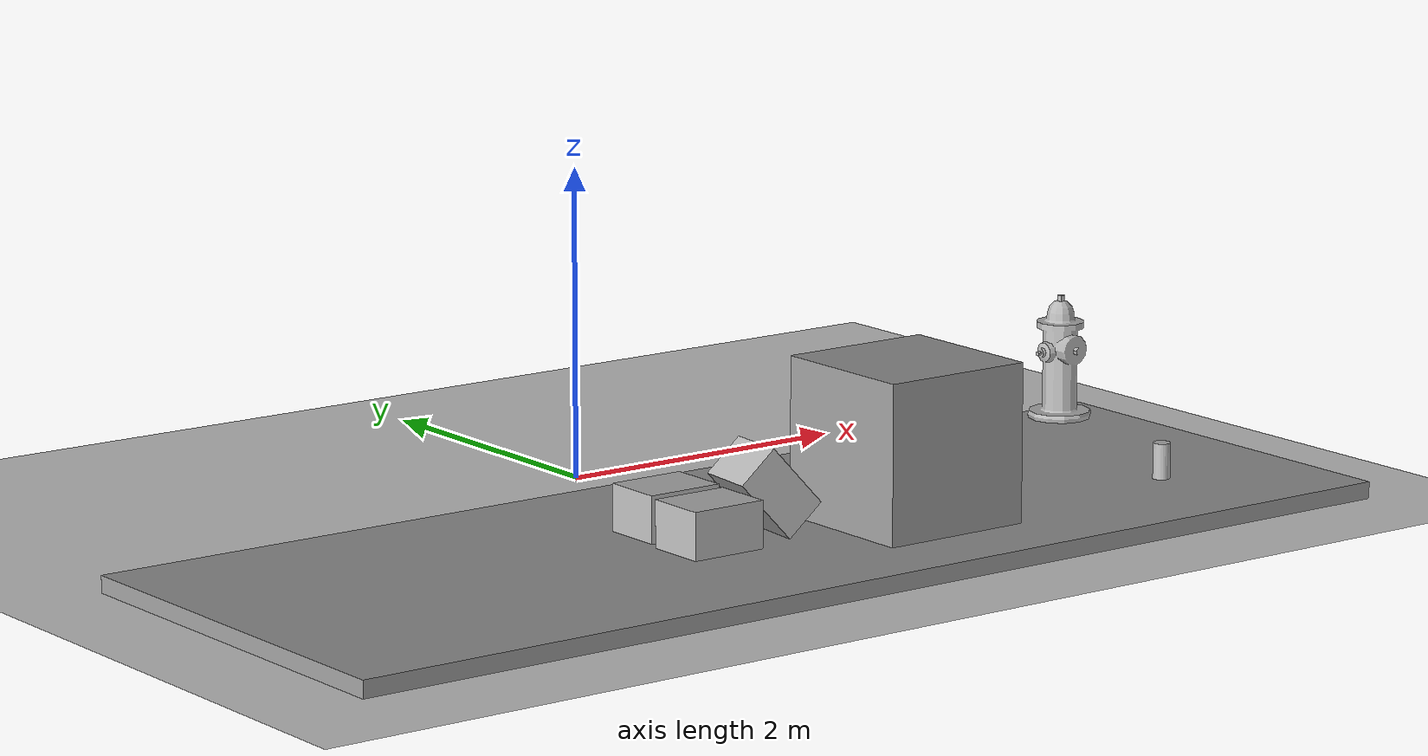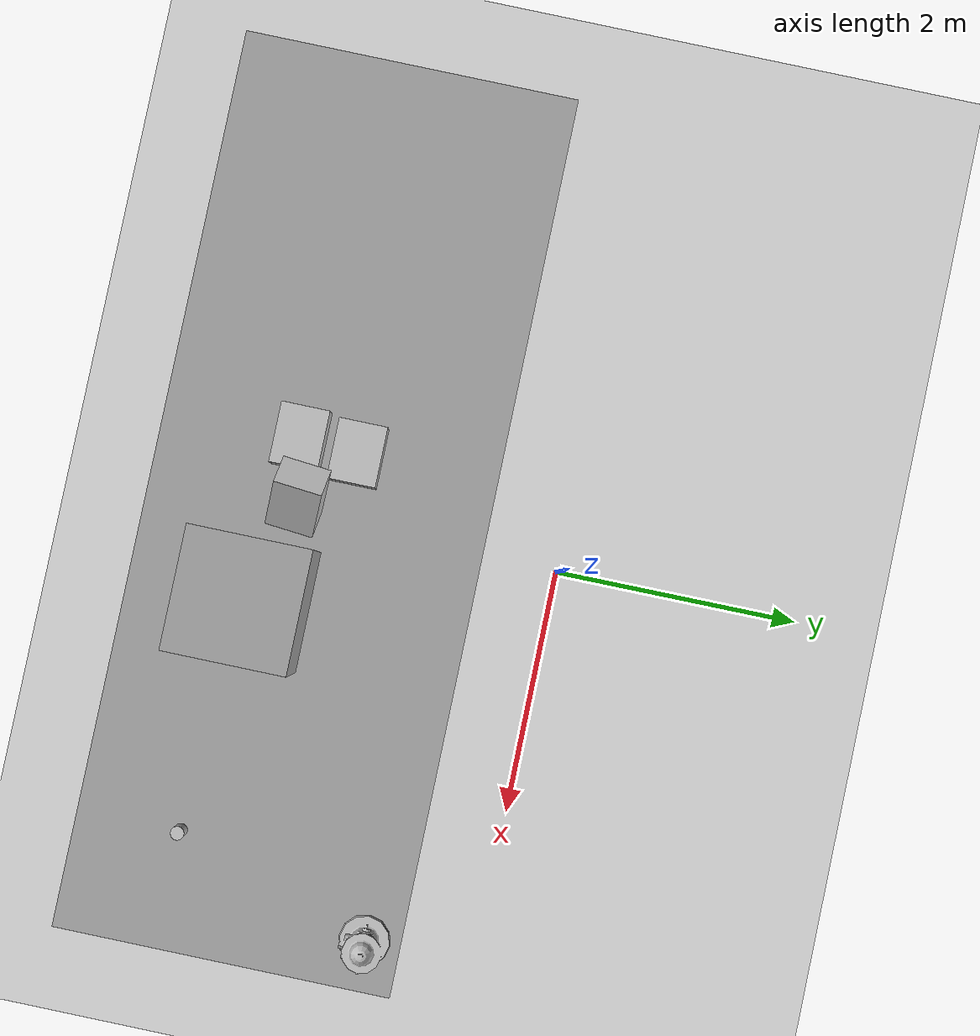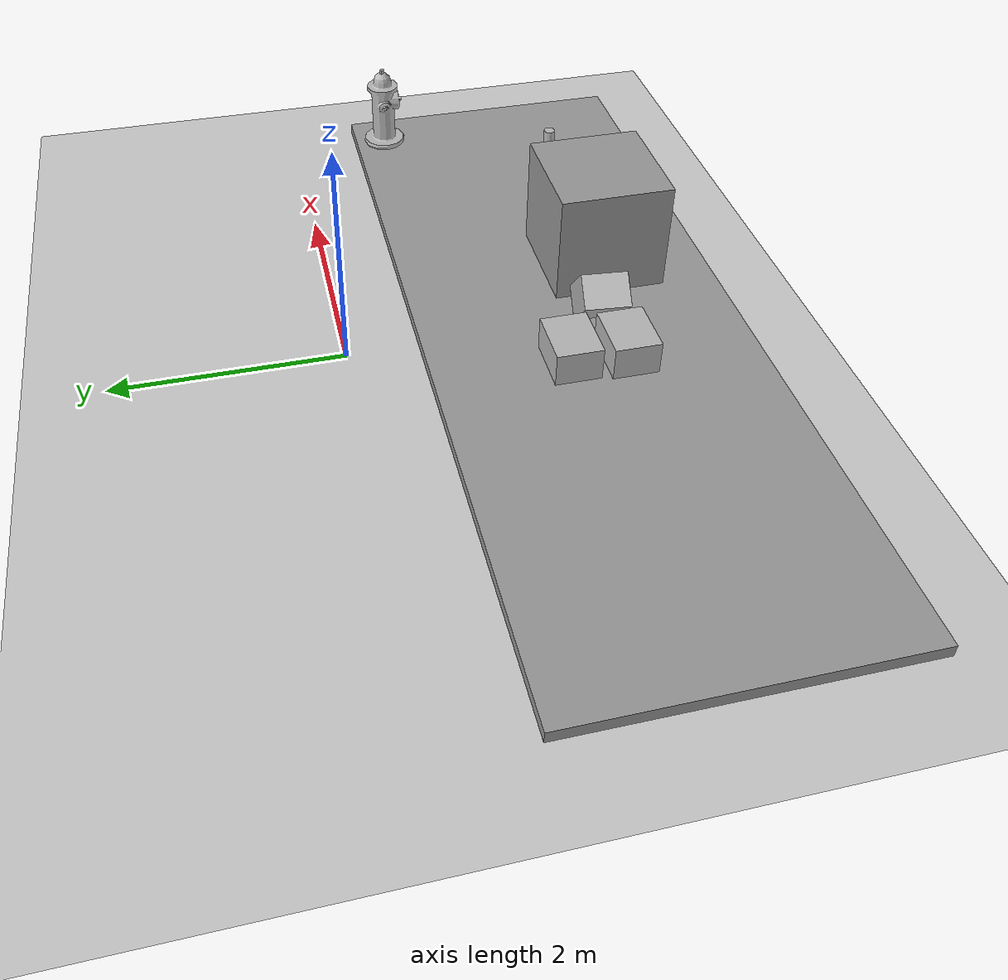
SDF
<sdf version="1.7">
 <world name="default">
  <light name="sun" type="directional">
   <pose>0 0 10 0 -0 0</pose>
   <diffuse>0.8 0.8 0.8 1</diffuse>
   <specular>0.2 0.2 0.2 1</specular>
   <attenuation>
    <range>1000</range>
    <constant>0.9</constant>
    <linear>0.01</linear>
    <quadratic>0.001</quadratic>
   </attenuation>
   <direction>-0.5 0.1 -0.9</direction>
   <spot><inner_angle>0</inner_angle><outer_angle>0</outer_angle><falloff>0</falloff></spot>
  </light>
  <model name="ground_plane">
   <static>1</static>
   <link name="link">
    <collision name="collision">
     <geometry><plane><normal>0 0 1</normal><size>100 100</size></plane></geometry>
     <surface><friction><ode><mu>100</mu><mu2>50</mu2></ode></friction></surface>
    </collision>
    <visual name="visual">
     <cast_shadows>0</cast_shadows>
     <geometry><plane><normal>0 0 1</normal><size>100 100</size></plane></geometry>
     <material>
      <script><uri>file://media/materials/scripts/gazebo.material</uri><name>Gazebo/Grey</name></script>
     </material>
    </visual>
   </link>
  </model>
  <gravity>0 0 -9.8</gravity>
  <magnetic_field>6e-06 2.3e-05 -4.2e-05</magnetic_field>
  <atmosphere type="adiabatic"/>
  <physics type="ode">
   <max_step_size>0.001</max_step_size>
   <real_time_factor>1</real_time_factor>
   <real_time_update_rate>1000</real_time_update_rate>
  </physics>
  <scene><ambient>0.4 0.4 0.4 1</ambient><background>0.7 0.7 0.7 1</background><shadows>1</shadows></scene>
  <spherical_coordinates>
   <surface_model>EARTH_WGS84</surface_model>
   <latitude_deg>0</latitude_deg>
   <longitude_deg>0</longitude_deg>
   <elevation>0</elevation>
   <heading_deg>0</heading_deg>
  </spherical_coordinates>
  <model name="grey_wall">
   <static>1</static>
   <link name="link">
    <pose>0 0 1.4 0 -0 0</pose>
    <collision name="collision"><geometry><box><size>7.5 0.2 2.8</size></box></geometry></collision>
    <visual name="visual">
     <cast_shadows>0</cast_shadows>
     <geometry><box><size>7.5 0.2 2.8</size></box></geometry>
     <material>
      <script>
       <uri>model://grey_wall/materials/scripts</uri>
       <uri>model://grey_wall/materials/textures</uri>
       <name>vrc/grey_wall</name>
      </script>
     </material>
    </visual>
   </link>
   <pose>-0.091714 -0.62023 5e-06 1.5708 -0 0</pose>
  </model>
  <model name="beer">
   <link name="link">
    <pose>0 0 0.115 0 -0 0</pose>
    <inertial>
     <mass>0.39</mass>
     <inertia><ixx>0.00058</ixx><ixy>0</ixy><ixz>0</ixz><iyy>0.00058</iyy><iyz>0</iyz><izz>0.00019</izz></inertia>
    </inertial>
    <collision name="collision">
     <geometry><cylinder><radius>0.055</radius><length>0.23</length></cylinder></geometry>
    </collision>
    <visual name="visual">
     <geometry><cylinder><radius>0.055</radius><length>0.23</length></cylinder></geometry>
     <material>
      <script>
       <uri>model://beer/materials/scripts</uri>
       <uri>model://beer/materials/textures</uri>
       <name>Beer/Diffuse</name>
      </script>
     </material>
    </visual>
   </link>
   <pose>2.68386 -2.56077 0.100004 3e-05 0.000105 -0.000944</pose>
  </model>
  <model name="unit_box">
   <pose>0.742356 -2.41636 0.599985 -6e-06 -1e-06 1e-06</pose>
   <link name="link">
    <inertial>
     <mass>1</mass>
     <inertia>
      <ixx>0.166667</ixx>
      <ixy>0</ixy>
      <ixz>0</ixz>
      <iyy>0.166667</iyy>
      <iyz>0</iyz>
      <izz>0.166667</izz>
     </inertia>
    </inertial>
    <collision name="collision"><geometry><box><size>1.00002 1 0.999983</size></box></geometry></collision>
    <visual name="visual">
     <geometry><box><size>1.00002 1 0.999983</size></box></geometry>
     <material>
      <script><name>Gazebo/Grey</name><uri>file://media/materials/scripts/gazebo.material</uri></script>
     </material>
    </visual>
   </link>
  </model>
  <model name="fire_hydrant">
   <static>1</static>
   <link name="link">
    <collision name="collision">
     <geometry><mesh><uri>model://fire_hydrant/meshes/fire_hydrant.dae</uri></mesh></geometry>
    </collision>
    <visual name="visual">
     <geometry><mesh><uri>model://fire_hydrant/meshes/fire_hydrant.dae</uri></mesh></geometry>
    </visual>
   </link>
   <pose>3.24098 -0.913817 0 0 -0 0</pose>
  </model>
  <model name="cardboard_box">
   <pose>-0.63429 -2.26467 0.248999 4e-06 -0 -4.5e-05</pose>
   <link name="link">
    <inertial>
     <mass>2</mass>
     <inertia>
      <ixx>0.0416667</ixx>
      <ixy>0</ixy>
      <ixz>0</ixz>
      <iyy>0.0566667</iyy>
      <iyz>0</iyz>
      <izz>0.0683333</izz>
     </inertia>
    </inertial>
    <collision name="collision">
     <geometry><box><size>0.5 0.4 0.3</size></box></geometry>
     <surface>
      <friction><ode><mu>1</mu><mu2>1</mu2></ode></friction>
      <contact><ode><kp>1e+07</kp><kd>1</kd><min_depth>0.001</min_depth><max_vel>0.1</max_vel></ode></contact>
     </surface>
    </collision>
    <visual name="visual">
     <pose>0 0 -0.15 0 -0 0</pose>
     <geometry>
      <mesh><uri>model://cardboard_box/meshes/cardboard_box.dae</uri><scale>1.25932 1.00745 0.755591</scale></mesh>
     </geometry>
    </visual>
   </link>
  </model>
  <model name="cardboard_box_0">
   <pose>-0.601182 -1.78172 0.249 4e-06 -0 -0.000209</pose>
   <link name="link">
    <inertial>
     <mass>2</mass>
     <inertia>
      <ixx>0.0416667</ixx>
      <ixy>0</ixy>
      <ixz>0</ixz>
      <iyy>0.0566667</iyy>
      <iyz>0</iyz>
      <izz>0.0683333</izz>
     </inertia>
    </inertial>
    <collision name="collision">
     <geometry><box><size>0.5 0.4 0.3</size></box></geometry>
     <surface>
      <friction><ode><mu>1</mu><mu2>1</mu2></ode></friction>
      <contact><ode><kp>1e+07</kp><kd>1</kd><min_depth>0.001</min_depth><max_vel>0.1</max_vel></ode></contact>
     </surface>
    </collision>
    <visual name="visual">
     <pose>0 0 -0.15 0 -0 0</pose>
     <geometry>
      <mesh><uri>model://cardboard_box/meshes/cardboard_box.dae</uri><scale>1.25932 1.00745 0.755591</scale></mesh>
     </geometry>
    </visual>
   </link>
  </model>
  <model name="cardboard_box_1">
   <pose>-0.153171 -2.17443 0.384981 4e-06 0.83467 -0.091422</pose>
   <link name="link">
    <inertial>
     <mass>2</mass>
     <inertia>
      <ixx>0.0416667</ixx>
      <ixy>0</ixy>
      <ixz>0</ixz>
      <iyy>0.0566667</iyy>
      <iyz>0</iyz>
      <izz>0.0683333</izz>
     </inertia>
    </inertial>
    <collision name="collision">
     <geometry><box><size>0.5 0.4 0.3</size></box></geometry>
     <surface>
      <friction><ode><mu>1</mu><mu2>1</mu2></ode></friction>
      <contact><ode><kp>1e+07</kp><kd>1</kd><min_depth>0.001</min_depth><max_vel>0.1</max_vel></ode></contact>
     </surface>
    </collision>
    <visual name="visual">
     <pose>0 0 -0.15 0 -0 0</pose>
     <geometry>
      <mesh><uri>model://cardboard_box/meshes/cardboard_box.dae</uri><scale>1.25932 1.00745 0.755591</scale></mesh>
     </geometry>
    </visual>
   </link>
  </model>
 </world>
</sdf>
